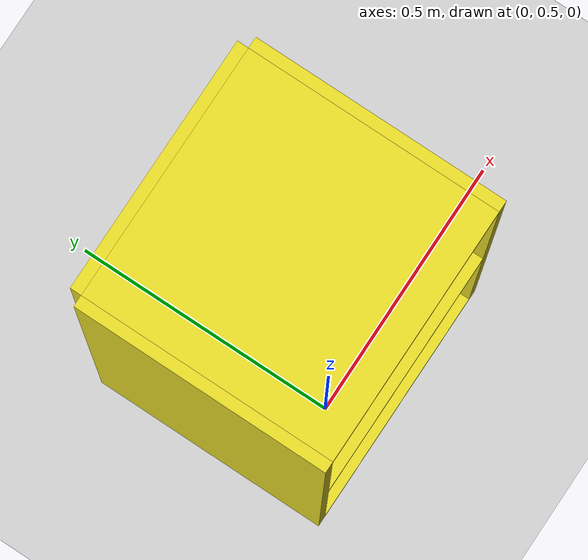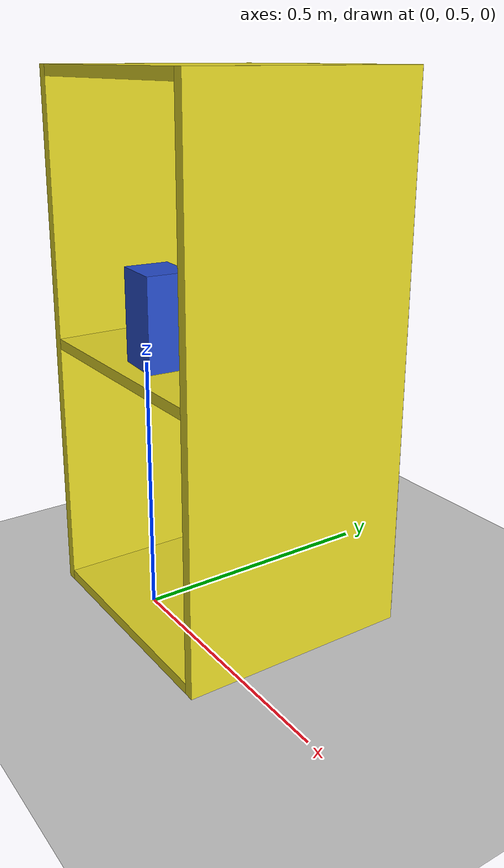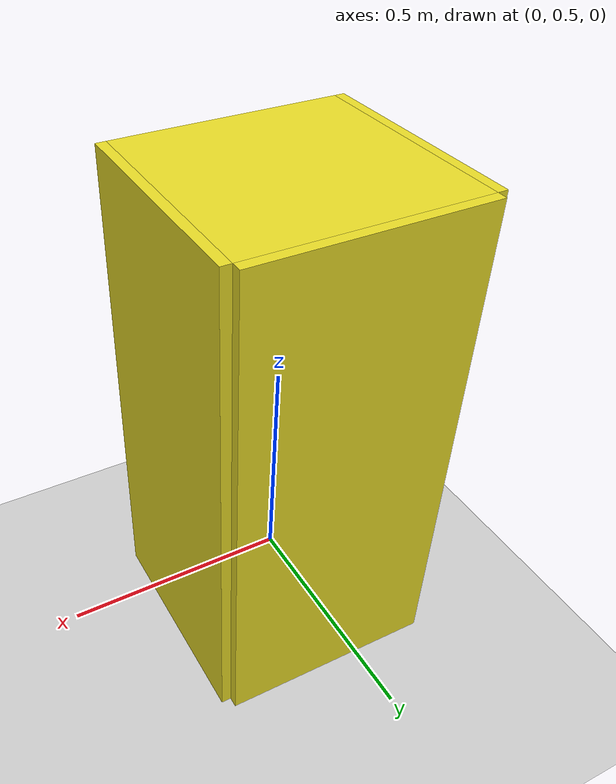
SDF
<sdf version="1.6">
 <world name="default">
  <light name="sun" type="directional">
   <pose>0 0 10 0 -0 0</pose>
   <diffuse>0.8 0.8 0.8 1</diffuse>
   <specular>0.2 0.2 0.2 1</specular>
   <attenuation>
    <range>1000</range>
    <constant>0.9</constant>
    <linear>0.01</linear>
    <quadratic>0.001</quadratic>
   </attenuation>
   <direction>-0.5 0.1 -0.9</direction>
  </light>
  <model name="ground_plane">
   <static>1</static>
   <link name="link">
    <collision name="collision">
     <geometry><plane><normal>0 0 1</normal><size>100 100</size></plane></geometry>
     <surface><friction><ode><mu>100</mu><mu2>50</mu2></ode></friction></surface>
    </collision>
    <visual name="visual">
     <cast_shadows>0</cast_shadows>
     <geometry><plane><normal>0 0 1</normal><size>100 100</size></plane></geometry>
     <material>
      <script><uri>file://media/materials/scripts/gazebo.material</uri><name>Gazebo/Grey</name></script>
     </material>
    </visual>
   </link>
  </model>
  <gravity>0 0 -9.8</gravity>
  <magnetic_field>6e-06 2.3e-05 -4.2e-05</magnetic_field>
  <atmosphere type="adiabatic"/>
  <physics name="default_physics" default="0" type="ode">
   <max_step_size>0.001</max_step_size>
   <real_time_factor>1</real_time_factor>
   <real_time_update_rate>1000</real_time_update_rate>
  </physics>
  <scene><ambient>0.4 0.4 0.4 1</ambient><background>0.7 0.7 0.7 1</background><shadows>1</shadows></scene>
  <audio><device>default</device></audio>
  <spherical_coordinates>
   <surface_model>EARTH_WGS84</surface_model>
   <latitude_deg>0</latitude_deg>
   <longitude_deg>0</longitude_deg>
   <elevation>0</elevation>
   <heading_deg>0</heading_deg>
  </spherical_coordinates>
  <model name="cabinet">
   <static>1</static>
   <link name="cabinet_bottom_plate">
    <inertial>
     <pose>0 0 -1 0 -0 0</pose>
     <inertia><ixx>2.05</ixx><ixy>0</ixy><ixz>0</ixz><iyy>2.05</iyy><iyz>0</iyz><izz>2.05</izz></inertia>
     <mass>25</mass>
    </inertial>
    <collision name="cabinet_bottom_plate_geom">
     <pose>0 0 0.01 0 -0 0</pose>
     <geometry><box><size>0.45 0.45 0.02</size></box></geometry>
    </collision>
    <visual name="cabinet_bottom_plate_geom_visual">
     <pose>0 0 0.01 0 -0 0</pose>
     <geometry><box><size>0.45 0.45 0.02</size></box></geometry>
     <material>
      <script><uri>file://media/materials/scripts/gazebo.material</uri><name>Gazebo/DarkYellow</name></script>
     </material>
    </visual>
    <collision name="cabinet_bottom_plate_geom_cabinet_back_plate">
     <pose>0.235 0 0.51 0 -0 0</pose>
     <geometry><box><size>0.02 0.45 1.02</size></box></geometry>
    </collision>
    <visual name="cabinet_bottom_plate_geom_cabinet_back_plate_visual">
     <pose>0.235 0 0.51 0 -0 0</pose>
     <geometry><box><size>0.02 0.45 1.02</size></box></geometry>
     <material>
      <script><uri>file://media/materials/scripts/gazebo.material</uri><name>Gazebo/DarkYellow</name></script>
     </material>
    </visual>
    <collision name="cabinet_bottom_plate_geom_cabinet_left_plate">
     <pose>0 0.235 0.51 0 -0 0</pose>
     <geometry><box><size>0.45 0.02 1.02</size></box></geometry>
    </collision>
    <visual name="cabinet_bottom_plate_geom_cabinet_left_plate_visual">
     <pose>0 0.235 0.51 0 -0 0</pose>
     <geometry><box><size>0.45 0.02 1.02</size></box></geometry>
     <material>
      <script><uri>file://media/materials/scripts/gazebo.material</uri><name>Gazebo/DarkYellow</name></script>
     </material>
    </visual>
    <collision name="cabinet_bottom_plate_geom_cabinet_middle_plate">
     <pose>0 0 0.51 0 -0 0</pose>
     <geometry><box><size>0.45 0.45 0.02</size></box></geometry>
    </collision>
    <visual name="cabinet_bottom_plate_geom_cabinet_middle_plate_visual">
     <pose>0 0 0.51 0 -0 0</pose>
     <geometry><box><size>0.45 0.45 0.02</size></box></geometry>
     <material>
      <script><uri>file://media/materials/scripts/gazebo.material</uri><name>Gazebo/DarkYellow</name></script>
     </material>
    </visual>
    <collision name="cabinet_bottom_plate_geom_cabinet_right_plate">
     <pose>0 -0.235 0.51 0 -0 0</pose>
     <geometry><box><size>0.45 0.02 1.02</size></box></geometry>
    </collision>
    <visual name="cabinet_bottom_plate_geom_cabinet_right_plate_visual">
     <pose>0 -0.235 0.51 0 -0 0</pose>
     <geometry><box><size>0.45 0.02 1.02</size></box></geometry>
     <material>
      <script><uri>file://media/materials/scripts/gazebo.material</uri><name>Gazebo/DarkYellow</name></script>
     </material>
    </visual>
    <collision name="cabinet_bottom_plate_geom_cabinet_top_plate">
     <pose>0 0 1.01 0 -0 0</pose>
     <geometry><box><size>0.45 0.45 0.02</size></box></geometry>
    </collision>
    <visual name="cabinet_bottom_plate_geom_cabinet_top_plate_visual">
     <pose>0 0 1.01 0 -0 0</pose>
     <geometry><box><size>0.45 0.45 0.02</size></box></geometry>
     <material>
      <script><uri>file://media/materials/scripts/gazebo.material</uri><name>Gazebo/DarkYellow</name></script>
     </material>
    </visual>
   </link>
   <pose>0.069066 0.622433 0.004063 0 -0 1.56869</pose>
  </model>
  <model name="unit_box">
   <pose>0.088432 0.477023 0.609378 -2.97083 -1.57079 2.89618</pose>
   <link name="link">
    <inertial>
     <mass>1</mass>
     <inertia>
      <ixx>0.166667</ixx>
      <ixy>0</ixy>
      <ixz>0</ixz>
      <iyy>0.166667</iyy>
      <iyz>0</iyz>
      <izz>0.166667</izz>
     </inertia>
    </inertial>
    <collision name="collision">
     <geometry><box><size>0.170629 0.081758 0.092796</size></box></geometry>
    </collision>
    <visual name="visual">
     <geometry><box><size>0.170629 0.081758 0.092796</size></box></geometry>
     <material>
      <script><name>Gazebo/Blue</name><uri>file://media/materials/scripts/gazebo.material</uri></script>
     </material>
    </visual>
   </link>
  </model>
  <light name="user_spot_light_0" type="spot">
   <pose>0.060862 0.640072 1 0 -0 0</pose>
   <diffuse>0.5 0.5 0.5 1</diffuse>
   <specular>0.1 0.1 0.1 1</specular>
   <direction>0 0 -1</direction>
   <attenuation>
    <range>20</range>
    <constant>0.5</constant>
    <linear>0.01</linear>
    <quadratic>0.001</quadratic>
   </attenuation>
   <cast_shadows>0</cast_shadows>
   <spot><inner_angle>0.6</inner_angle><outer_angle>1</outer_angle><falloff>1</falloff></spot>
  </light>
 </world>
</sdf>
